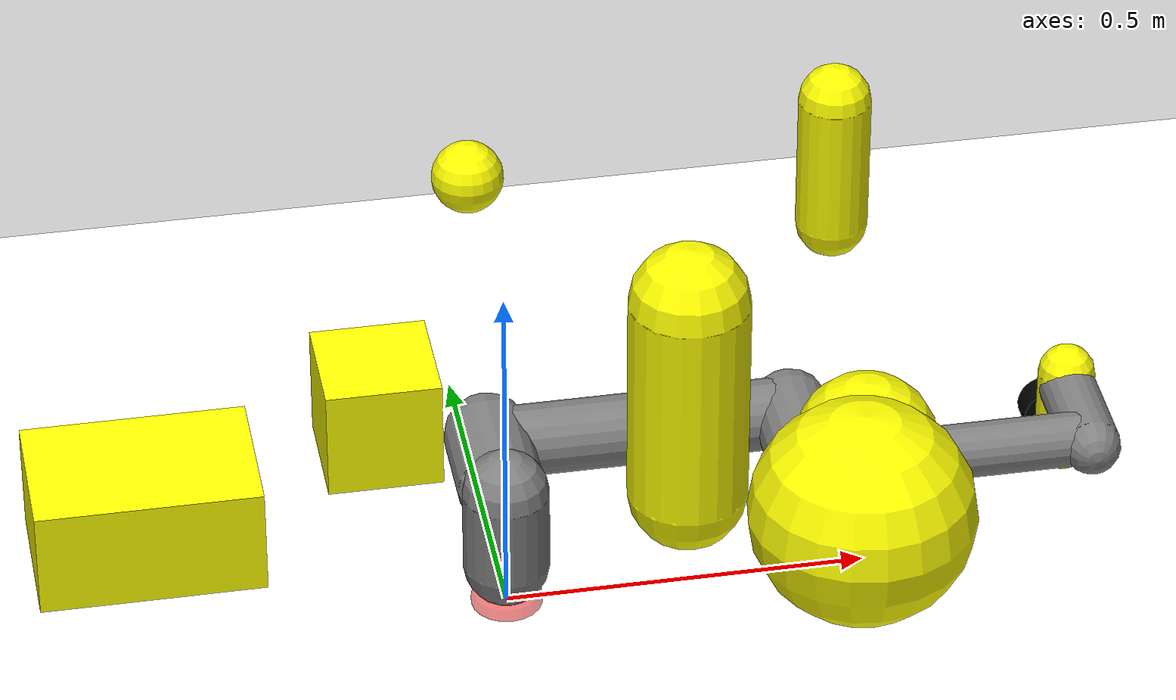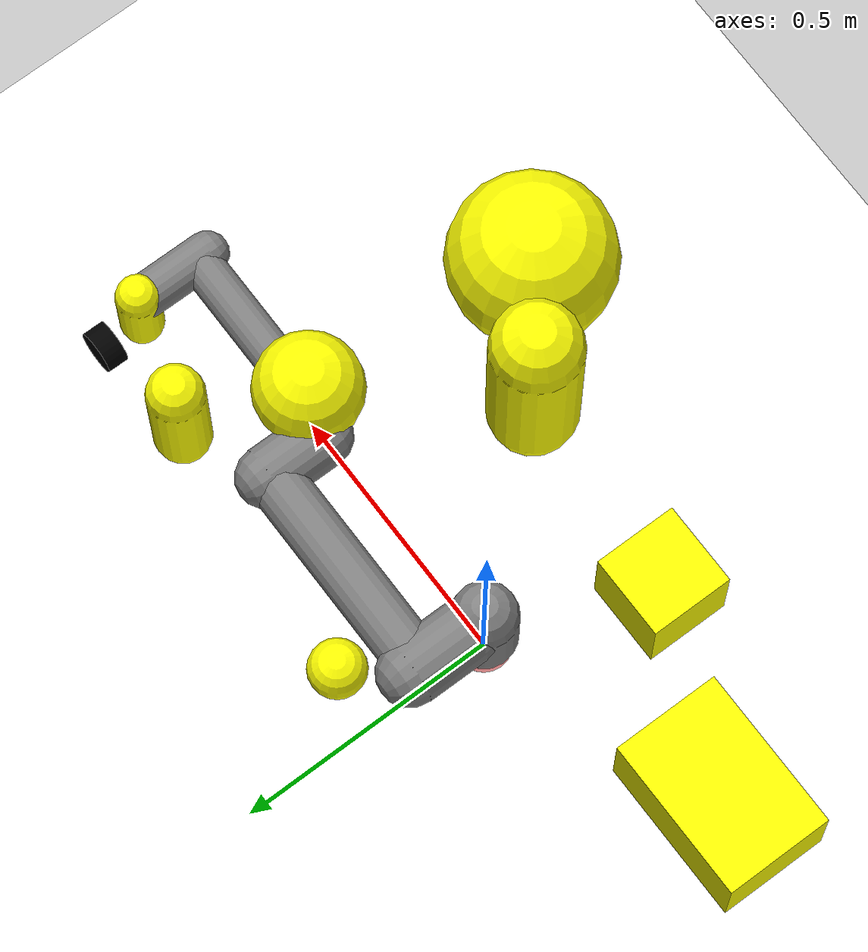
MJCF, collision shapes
<mujoco model="ur5e">
  <compiler angle="radian" />

  <option integrator="implicitfast" timestep="0.01" />

  <default>
    <default class="ur5e">
      <material specular="0.5" shininess="0.25" />
      <joint axis="0 1 0" range="-6.28319 6.28319" limited="false" armature="0.1" damping="0.1" />
      <general gaintype="fixed" biastype="affine" ctrlrange="-6.2831 6.2831" ctrllimited="false"
        gainprm="1"
        biasprm="0 0 0"
        forcerange="-150 150"
        forcelimited="false" />

      <default class="size3">
        <default class="size3_limited">
          <joint range="-3.1415 3.1415" limited="false" />
          <general ctrlrange="-3.1415 3.1415" ctrllimited="false" />
        </default>
      </default>
      <default class="size1">
        <general gainprm="1" biasprm="0 0 0" forcerange="-28 28" forcelimited="false" />
      </default>
      <default class="visual">
        <geom type="mesh" contype="0" conaffinity="0" group="2" />
      </default>
      <default class="collision" >
        <geom type="capsule" group="3" contype="1" conaffinity="7" margin="0.02" gap="0.02"/>
        <default class="eef_collision">
          <geom type="cylinder" contype="1" conaffinity="7" margin="0.02"/>
        </default>
      </default>
      <site size="0.001" rgba="0.5 0.5 0.5 0.3" group="4" />
    </default>
   <default class="obstacle"> <geom contype="4" conaffinity="1" rgba="1 1 0 1" margin="0.02" gap="0.02"></geom></default>
  </default>

  <asset>
    <material class="ur5e" name="black" rgba="0.033 0.033 0.033 1" />
    <material class="ur5e" name="jointgray" rgba="0.278 0.278 0.278 1" />
    <material class="ur5e" name="linkgray" rgba="0.82 0.82 0.82 1" />
    <material class="ur5e" name="urblue" rgba="0.49 0.678 0.8 1" />

    <mesh file="assets/base_0.obj" />
    <mesh file="assets/base_1.obj" />
    <mesh file="assets/shoulder_0.obj" />
    <mesh file="assets/shoulder_1.obj" />
    <mesh file="assets/shoulder_2.obj" />
    <mesh file="assets/upperarm_0.obj" />
    <mesh file="assets/upperarm_1.obj" />
    <mesh file="assets/upperarm_2.obj" />
    <mesh file="assets/upperarm_3.obj" />
    <mesh file="assets/forearm_0.obj" />
    <mesh file="assets/forearm_1.obj" />
    <mesh file="assets/forearm_2.obj" />
    <mesh file="assets/forearm_3.obj" />
    <mesh file="assets/wrist1_0.obj" />
    <mesh file="assets/wrist1_1.obj" />
    <mesh file="assets/wrist1_2.obj" />
    <mesh file="assets/wrist2_0.obj" />
    <mesh file="assets/wrist2_1.obj" />
    <mesh file="assets/wrist2_2.obj" />
    <mesh file="assets/wrist3.obj" />
  </asset>

  <!-- for the grid floor -->
  <asset>
    <texture name="grid_texture"
      type="2d"
      builtin="checker"
      width="512"
      height="512"
      rgb1="0.5 0.5 0.5" rgb2="1 1 1" />

    <material name="grid"
      texture="grid_texture"
      texrepeat="1 1" texuniform="true" reflectance="0.5"
    />

  </asset>

  <worldbody>

    <!-- added global light to increase brightness -->
    <light name="global_light"
      pos="0 0 4"
      dir="0 0 -1"
      directional="true"
      diffuse="0.8 0.8 0.8"
      specular="0.1 0.1 0.1" />

    <!-- checkered ground -->
    <geom name="ground"
      type="plane"
      size="20 20 0.1"
      material="grid" rgba="1 1 1 1" contype="4" conaffinity="1" margin="0.02" gap="0.02"/>

    <body name="base" childclass="ur5e">
      <inertial mass="4.0" pos="0 0 0" diaginertia="0.00443333156 0.00443333156 0.0072" />
      <geom mesh="base_0" material="black" class="visual" />
      <geom mesh="base_1" material="jointgray" class="visual" />
      <body name="shoulder_link" pos="0 0 0.163">
        <inertial mass="3.7" pos="0 0 0" diaginertia="0.0102675 0.0102675 0.00666" />
        <joint name="shoulder_pan_joint" class="size3" axis="0 0 1" />
        <geom mesh="shoulder_0" material="urblue" class="visual" />
        <geom mesh="shoulder_1" material="black" class="visual" />
        <geom mesh="shoulder_2" material="jointgray" class="visual" />
        <geom class="collision" size="0.06 0.06" pos="0 0 -0.04" />
        <body name="upper_arm_link" pos="0 0.138 0" quat="1 0 1 0">
          <inertial mass="8.393" pos="0 0 0.2125" diaginertia="0.133886 0.133886 0.0151074" />
          <joint name="shoulder_lift_joint" class="size3" />
          <geom mesh="upperarm_0" material="linkgray" class="visual" />
          <geom mesh="upperarm_1" material="black" class="visual" />
          <geom mesh="upperarm_2" material="jointgray" class="visual" />
          <geom mesh="upperarm_3" material="urblue" class="visual" />
          <geom class="collision" pos="0 -0.04 0" quat="1 1 0 0" size="0.06 0.06" />
          <geom class="collision" size="0.05 0.2" pos="0 0 0.2" />
          <body name="forearm_link" pos="0 -0.131 0.425">
            <inertial mass="2.275" pos="0 0 0.196" diaginertia="0.0311796 0.0311796 0.004095" />
            <joint name="elbow_joint" class="size3_limited" />
            <geom mesh="forearm_0" material="urblue" class="visual" />
            <geom mesh="forearm_1" material="linkgray" class="visual" />
            <geom mesh="forearm_2" material="black" class="visual" />
            <geom mesh="forearm_3" material="jointgray" class="visual" />
            <geom class="collision" pos="0 0.08 0" quat="1 1 0 0" size="0.055 0.06" />
            <geom class="collision" size="0.038 0.19" pos="0 0 0.2" />
            <body name="wrist_1_link" pos="0 0 0.392" quat="1 0 1 0">
              <inertial mass="1.219" pos="0 0.127 0" diaginertia="0.0025599 0.0025599 0.0021942" />
              <joint name="wrist_1_joint" class="size1" />
              <geom mesh="wrist1_0" material="black" class="visual" />
              <geom mesh="wrist1_1" material="urblue" class="visual" />
              <geom mesh="wrist1_2" material="jointgray" class="visual" />
              <geom class="collision" pos="0 0.05 0" quat="1 1 0 0" size="0.04 0.07" />
              <body name="wrist_2_link" pos="0 0.127 0">
                <inertial mass="1.219" pos="0 0 0.1" diaginertia="0.0025599 0.0025599 0.0021942" />
                <joint name="wrist_2_joint" axis="0 0 1" class="size1" />
                <geom mesh="wrist2_0" material="black" class="visual" />
                <geom mesh="wrist2_1" material="urblue" class="visual" />
                <geom mesh="wrist2_2" material="jointgray" class="visual" />
                <geom class="collision" size="0.04 0.06" pos="0 0 0.04" rgba="1 1 0 0.5"/>
                <body name="wrist_3_link" pos="0 0 0.1">
                  <inertial mass="0.1889" pos="0 0.0771683 0" quat="1 0 0 1"
                    diaginertia="0.000132134 9.90863e-05 9.90863e-05" />
                  <joint name="wrist_3_joint"
                    class="size1" />
                  <geom material="linkgray" mesh="wrist3" class="visual" />
                  <geom
                    name="eef_geom" class="eef_collision" pos="0 0.08 0" quat="1 1 0 0"
                    size="0.04 0.02" rgba="0 0 0 0.25"/>
                  <site name="UR_TCP" pos="0 0.1 0" quat="1 0 0 0" />
                  <site
                    name="attachment_site" pos="0 0.1 0" quat="-1 1 0 0" />
                </body>
              </body>
            </body>
          </body>
        </body>
      </body>
    </body>
    <body>
      <geom class="obstacle" name="obstacle_sphere" type="sphere" size="0.1" pos="0.5 0 0.2"></geom>
    </body>
    <body>
      <geom class="obstacle" name="obstacle_box" type="box" size="0.075 0.075 0.075" pos="-0.2 -0.2 0.5"></geom>
    </body>
    <body>
      <geom class="obstacle" name="obstacle_capsule" type="capsule" size="0.05 0.1" pos="0.5 0.25 0.5"></geom>
    </body>
    <body>
      <geom class="obstacle" name="obstacle_sphere_1" type="sphere" size="0.05 0.1" pos="0.0 0.3 0.5"></geom>
    </body>
     <body>
      <geom class="obstacle" name="obstacle_box_2" type="box" size="0.15 0.1 0.075" pos="-0.5 -0.1 0.3"></geom>
    </body>
    <body>
      <geom class="obstacle" name="obstacle_sphere_2" type="sphere" size=" 0.15" pos="0.4 -0.4 0.4"></geom>
    </body>
    <body>
      <geom class="obstacle" name="obstacle_capsule1" type="capsule" size="0.08 0.15" pos="0.20 -0.25 0.5"></geom>
    </body>

    <body name="debug_marker" mocap="true" pos="0 0 0">
      <geom type="sphere" size="0.05" rgba="1 0 0 0.5" contype="0" conaffinity="0"/>
    </body>
  </worldbody>

  <contact>
      <exclude body1="world" body2="shoulder_link"/>
      <exclude body1="shoulder_link" body2="upper_arm_link"/>
      <exclude body1="upper_arm_link" body2="forearm_link"/>
      <exclude body1="forearm_link" body2="wrist_1_link"/>
      <exclude body1="wrist_1_link" body2="wrist_2_link"/>
      <exclude body1="wrist_2_link" body2="wrist_3_link"/>

  </contact>

  <actuator>
    <general class="size3" name="shoulder_pan" joint="shoulder_pan_joint" />
    <general class="size3" name="shoulder_lift" joint="shoulder_lift_joint" />
    <general class="size3_limited" name="elbow" joint="elbow_joint" />
    <general class="size1" name="wrist_1" joint="wrist_1_joint" />
    <general class="size1" name="wrist_2" joint="wrist_2_joint" />
    <general class="size1" name="wrist_3" joint="wrist_3_joint" />
  </actuator>

  <keyframe>
    <key name=" upright" qpos=" 0 -1.5708 0 0 1.5708 0" />
  </keyframe>
</mujoco>
